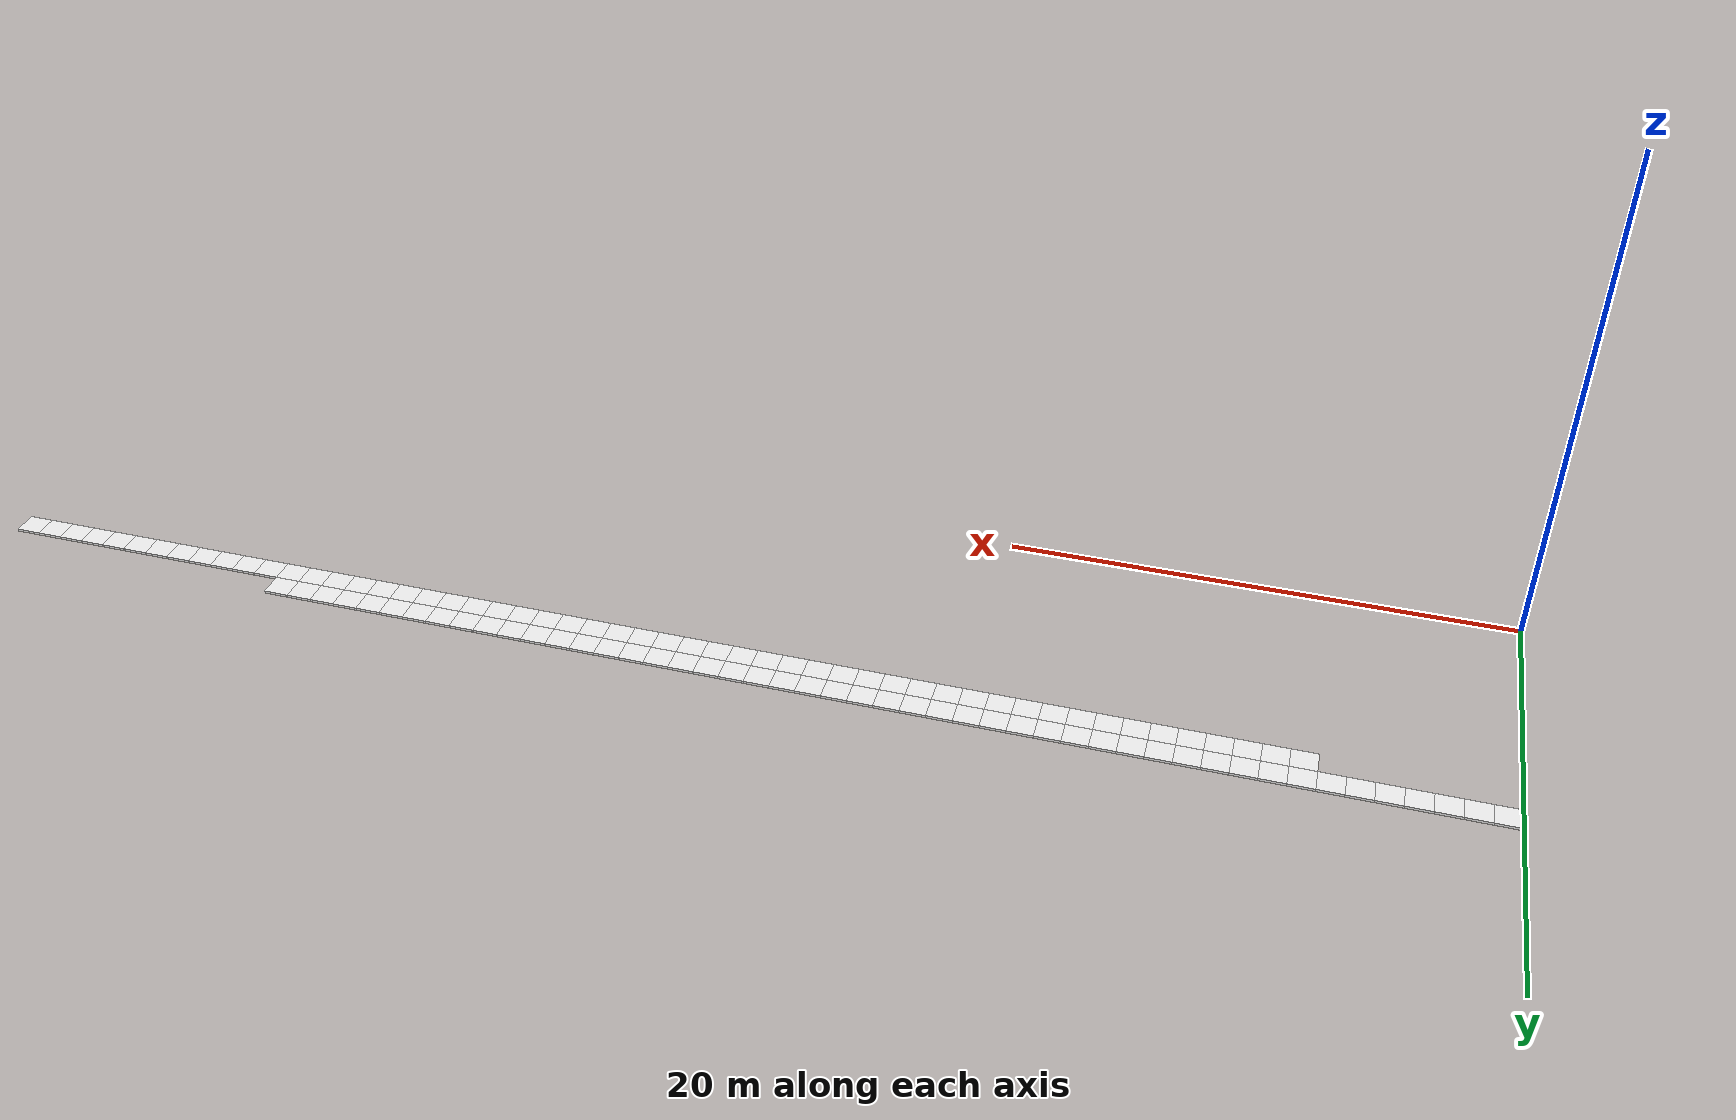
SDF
<sdf version="1.6">
 <world name="grid_world">
  <model name="cell_7_10">
   <static>true</static>
   <link name="link">
    <collision name="collision"><geometry><box><size>1 1 0.1</size></box></geometry></collision>
    <visual name="visual">
     <geometry><box><size>1 1 0.1</size></box></geometry>
     <material>
      <script><uri>file://media/materials/scripts/gazebo.material</uri><name>Gazebo/White</name></script>
     </material>
    </visual>
    <pose>7.5 10.5 0.05 0 0 0</pose>
   </link>
  </model>
  <model name="cell_8_10">
   <static>true</static>
   <link name="link">
    <collision name="collision"><geometry><box><size>1 1 0.1</size></box></geometry></collision>
    <visual name="visual">
     <geometry><box><size>1 1 0.1</size></box></geometry>
     <material>
      <script><uri>file://media/materials/scripts/gazebo.material</uri><name>Gazebo/White</name></script>
     </material>
    </visual>
    <pose>8.5 10.5 0.05 0 0 0</pose>
   </link>
  </model>
  <model name="cell_9_10">
   <static>true</static>
   <link name="link">
    <collision name="collision"><geometry><box><size>1 1 0.1</size></box></geometry></collision>
    <visual name="visual">
     <geometry><box><size>1 1 0.1</size></box></geometry>
     <material>
      <script><uri>file://media/materials/scripts/gazebo.material</uri><name>Gazebo/White</name></script>
     </material>
    </visual>
    <pose>9.5 10.5 0.05 0 0 0</pose>
   </link>
  </model>
  <model name="cell_10_10">
   <static>true</static>
   <link name="link">
    <collision name="collision"><geometry><box><size>1 1 0.1</size></box></geometry></collision>
    <visual name="visual">
     <geometry><box><size>1 1 0.1</size></box></geometry>
     <material>
      <script><uri>file://media/materials/scripts/gazebo.material</uri><name>Gazebo/White</name></script>
     </material>
    </visual>
    <pose>10.5 10.5 0.05 0 0 0</pose>
   </link>
  </model>
  <model name="cell_11_10">
   <static>true</static>
   <link name="link">
    <collision name="collision"><geometry><box><size>1 1 0.1</size></box></geometry></collision>
    <visual name="visual">
     <geometry><box><size>1 1 0.1</size></box></geometry>
     <material>
      <script><uri>file://media/materials/scripts/gazebo.material</uri><name>Gazebo/White</name></script>
     </material>
    </visual>
    <pose>11.5 10.5 0.05 0 0 0</pose>
   </link>
  </model>
  <model name="cell_12_10">
   <static>true</static>
   <link name="link">
    <collision name="collision"><geometry><box><size>1 1 0.1</size></box></geometry></collision>
    <visual name="visual">
     <geometry><box><size>1 1 0.1</size></box></geometry>
     <material>
      <script><uri>file://media/materials/scripts/gazebo.material</uri><name>Gazebo/White</name></script>
     </material>
    </visual>
    <pose>12.5 10.5 0.05 0 0 0</pose>
   </link>
  </model>
  <model name="cell_13_10">
   <static>true</static>
   <link name="link">
    <collision name="collision"><geometry><box><size>1 1 0.1</size></box></geometry></collision>
    <visual name="visual">
     <geometry><box><size>1 1 0.1</size></box></geometry>
     <material>
      <script><uri>file://media/materials/scripts/gazebo.material</uri><name>Gazebo/White</name></script>
     </material>
    </visual>
    <pose>13.5 10.5 0.05 0 0 0</pose>
   </link>
  </model>
  <model name="cell_14_10">
   <static>true</static>
   <link name="link">
    <collision name="collision"><geometry><box><size>1 1 0.1</size></box></geometry></collision>
    <visual name="visual">
     <geometry><box><size>1 1 0.1</size></box></geometry>
     <material>
      <script><uri>file://media/materials/scripts/gazebo.material</uri><name>Gazebo/White</name></script>
     </material>
    </visual>
    <pose>14.5 10.5 0.05 0 0 0</pose>
   </link>
  </model>
  <model name="cell_15_10">
   <static>true</static>
   <link name="link">
    <collision name="collision"><geometry><box><size>1 1 0.1</size></box></geometry></collision>
    <visual name="visual">
     <geometry><box><size>1 1 0.1</size></box></geometry>
     <material>
      <script><uri>file://media/materials/scripts/gazebo.material</uri><name>Gazebo/White</name></script>
     </material>
    </visual>
    <pose>15.5 10.5 0.05 0 0 0</pose>
   </link>
  </model>
  <model name="cell_16_10">
   <static>true</static>
   <link name="link">
    <collision name="collision"><geometry><box><size>1 1 0.1</size></box></geometry></collision>
    <visual name="visual">
     <geometry><box><size>1 1 0.1</size></box></geometry>
     <material>
      <script><uri>file://media/materials/scripts/gazebo.material</uri><name>Gazebo/White</name></script>
     </material>
    </visual>
    <pose>16.5 10.5 0.05 0 0 0</pose>
   </link>
  </model>
  <model name="cell_17_10">
   <static>true</static>
   <link name="link">
    <collision name="collision"><geometry><box><size>1 1 0.1</size></box></geometry></collision>
    <visual name="visual">
     <geometry><box><size>1 1 0.1</size></box></geometry>
     <material>
      <script><uri>file://media/materials/scripts/gazebo.material</uri><name>Gazebo/White</name></script>
     </material>
    </visual>
    <pose>17.5 10.5 0.05 0 0 0</pose>
   </link>
  </model>
  <model name="cell_18_10">
   <static>true</static>
   <link name="link">
    <collision name="collision"><geometry><box><size>1 1 0.1</size></box></geometry></collision>
    <visual name="visual">
     <geometry><box><size>1 1 0.1</size></box></geometry>
     <material>
      <script><uri>file://media/materials/scripts/gazebo.material</uri><name>Gazebo/White</name></script>
     </material>
    </visual>
    <pose>18.5 10.5 0.05 0 0 0</pose>
   </link>
  </model>
  <model name="cell_19_10">
   <static>true</static>
   <link name="link">
    <collision name="collision"><geometry><box><size>1 1 0.1</size></box></geometry></collision>
    <visual name="visual">
     <geometry><box><size>1 1 0.1</size></box></geometry>
     <material>
      <script><uri>file://media/materials/scripts/gazebo.material</uri><name>Gazebo/White</name></script>
     </material>
    </visual>
    <pose>19.5 10.5 0.05 0 0 0</pose>
   </link>
  </model>
  <model name="cell_20_10">
   <static>true</static>
   <link name="link">
    <collision name="collision"><geometry><box><size>1 1 0.1</size></box></geometry></collision>
    <visual name="visual">
     <geometry><box><size>1 1 0.1</size></box></geometry>
     <material>
      <script><uri>file://media/materials/scripts/gazebo.material</uri><name>Gazebo/White</name></script>
     </material>
    </visual>
    <pose>20.5 10.5 0.05 0 0 0</pose>
   </link>
  </model>
  <model name="cell_21_10">
   <static>true</static>
   <link name="link">
    <collision name="collision"><geometry><box><size>1 1 0.1</size></box></geometry></collision>
    <visual name="visual">
     <geometry><box><size>1 1 0.1</size></box></geometry>
     <material>
      <script><uri>file://media/materials/scripts/gazebo.material</uri><name>Gazebo/White</name></script>
     </material>
    </visual>
    <pose>21.5 10.5 0.05 0 0 0</pose>
   </link>
  </model>
  <model name="cell_22_10">
   <static>true</static>
   <link name="link">
    <collision name="collision"><geometry><box><size>1 1 0.1</size></box></geometry></collision>
    <visual name="visual">
     <geometry><box><size>1 1 0.1</size></box></geometry>
     <material>
      <script><uri>file://media/materials/scripts/gazebo.material</uri><name>Gazebo/White</name></script>
     </material>
    </visual>
    <pose>22.5 10.5 0.05 0 0 0</pose>
   </link>
  </model>
  <model name="cell_23_10">
   <static>true</static>
   <link name="link">
    <collision name="collision"><geometry><box><size>1 1 0.1</size></box></geometry></collision>
    <visual name="visual">
     <geometry><box><size>1 1 0.1</size></box></geometry>
     <material>
      <script><uri>file://media/materials/scripts/gazebo.material</uri><name>Gazebo/White</name></script>
     </material>
    </visual>
    <pose>23.5 10.5 0.05 0 0 0</pose>
   </link>
  </model>
  <model name="cell_24_10">
   <static>true</static>
   <link name="link">
    <collision name="collision"><geometry><box><size>1 1 0.1</size></box></geometry></collision>
    <visual name="visual">
     <geometry><box><size>1 1 0.1</size></box></geometry>
     <material>
      <script><uri>file://media/materials/scripts/gazebo.material</uri><name>Gazebo/White</name></script>
     </material>
    </visual>
    <pose>24.5 10.5 0.05 0 0 0</pose>
   </link>
  </model>
  <model name="cell_25_10">
   <static>true</static>
   <link name="link">
    <collision name="collision"><geometry><box><size>1 1 0.1</size></box></geometry></collision>
    <visual name="visual">
     <geometry><box><size>1 1 0.1</size></box></geometry>
     <material>
      <script><uri>file://media/materials/scripts/gazebo.material</uri><name>Gazebo/White</name></script>
     </material>
    </visual>
    <pose>25.5 10.5 0.05 0 0 0</pose>
   </link>
  </model>
  <model name="cell_26_10">
   <static>true</static>
   <link name="link">
    <collision name="collision"><geometry><box><size>1 1 0.1</size></box></geometry></collision>
    <visual name="visual">
     <geometry><box><size>1 1 0.1</size></box></geometry>
     <material>
      <script><uri>file://media/materials/scripts/gazebo.material</uri><name>Gazebo/White</name></script>
     </material>
    </visual>
    <pose>26.5 10.5 0.05 0 0 0</pose>
   </link>
  </model>
  <model name="cell_27_10">
   <static>true</static>
   <link name="link">
    <collision name="collision"><geometry><box><size>1 1 0.1</size></box></geometry></collision>
    <visual name="visual">
     <geometry><box><size>1 1 0.1</size></box></geometry>
     <material>
      <script><uri>file://media/materials/scripts/gazebo.material</uri><name>Gazebo/White</name></script>
     </material>
    </visual>
    <pose>27.5 10.5 0.05 0 0 0</pose>
   </link>
  </model>
  <model name="cell_28_10">
   <static>true</static>
   <link name="link">
    <collision name="collision"><geometry><box><size>1 1 0.1</size></box></geometry></collision>
    <visual name="visual">
     <geometry><box><size>1 1 0.1</size></box></geometry>
     <material>
      <script><uri>file://media/materials/scripts/gazebo.material</uri><name>Gazebo/White</name></script>
     </material>
    </visual>
    <pose>28.5 10.5 0.05 0 0 0</pose>
   </link>
  </model>
  <model name="cell_29_10">
   <static>true</static>
   <link name="link">
    <collision name="collision"><geometry><box><size>1 1 0.1</size></box></geometry></collision>
    <visual name="visual">
     <geometry><box><size>1 1 0.1</size></box></geometry>
     <material>
      <script><uri>file://media/materials/scripts/gazebo.material</uri><name>Gazebo/White</name></script>
     </material>
    </visual>
    <pose>29.5 10.5 0.05 0 0 0</pose>
   </link>
  </model>
  <model name="cell_30_10">
   <static>true</static>
   <link name="link">
    <collision name="collision"><geometry><box><size>1 1 0.1</size></box></geometry></collision>
    <visual name="visual">
     <geometry><box><size>1 1 0.1</size></box></geometry>
     <material>
      <script><uri>file://media/materials/scripts/gazebo.material</uri><name>Gazebo/White</name></script>
     </material>
    </visual>
    <pose>30.5 10.5 0.05 0 0 0</pose>
   </link>
  </model>
  <model name="cell_31_10">
   <static>true</static>
   <link name="link">
    <collision name="collision"><geometry><box><size>1 1 0.1</size></box></geometry></collision>
    <visual name="visual">
     <geometry><box><size>1 1 0.1</size></box></geometry>
     <material>
      <script><uri>file://media/materials/scripts/gazebo.material</uri><name>Gazebo/White</name></script>
     </material>
    </visual>
    <pose>31.5 10.5 0.05 0 0 0</pose>
   </link>
  </model>
  <model name="cell_32_10">
   <static>true</static>
   <link name="link">
    <collision name="collision"><geometry><box><size>1 1 0.1</size></box></geometry></collision>
    <visual name="visual">
     <geometry><box><size>1 1 0.1</size></box></geometry>
     <material>
      <script><uri>file://media/materials/scripts/gazebo.material</uri><name>Gazebo/White</name></script>
     </material>
    </visual>
    <pose>32.5 10.5 0.05 0 0 0</pose>
   </link>
  </model>
  <model name="cell_33_10">
   <static>true</static>
   <link name="link">
    <collision name="collision"><geometry><box><size>1 1 0.1</size></box></geometry></collision>
    <visual name="visual">
     <geometry><box><size>1 1 0.1</size></box></geometry>
     <material>
      <script><uri>file://media/materials/scripts/gazebo.material</uri><name>Gazebo/White</name></script>
     </material>
    </visual>
    <pose>33.5 10.5 0.05 0 0 0</pose>
   </link>
  </model>
  <model name="cell_34_10">
   <static>true</static>
   <link name="link">
    <collision name="collision"><geometry><box><size>1 1 0.1</size></box></geometry></collision>
    <visual name="visual">
     <geometry><box><size>1 1 0.1</size></box></geometry>
     <material>
      <script><uri>file://media/materials/scripts/gazebo.material</uri><name>Gazebo/White</name></script>
     </material>
    </visual>
    <pose>34.5 10.5 0.05 0 0 0</pose>
   </link>
  </model>
  <model name="cell_35_10">
   <static>true</static>
   <link name="link">
    <collision name="collision"><geometry><box><size>1 1 0.1</size></box></geometry></collision>
    <visual name="visual">
     <geometry><box><size>1 1 0.1</size></box></geometry>
     <material>
      <script><uri>file://media/materials/scripts/gazebo.material</uri><name>Gazebo/White</name></script>
     </material>
    </visual>
    <pose>35.5 10.5 0.05 0 0 0</pose>
   </link>
  </model>
  <model name="cell_36_10">
   <static>true</static>
   <link name="link">
    <collision name="collision"><geometry><box><size>1 1 0.1</size></box></geometry></collision>
    <visual name="visual">
     <geometry><box><size>1 1 0.1</size></box></geometry>
     <material>
      <script><uri>file://media/materials/scripts/gazebo.material</uri><name>Gazebo/White</name></script>
     </material>
    </visual>
    <pose>36.5 10.5 0.05 0 0 0</pose>
   </link>
  </model>
  <model name="cell_37_10">
   <static>true</static>
   <link name="link">
    <collision name="collision"><geometry><box><size>1 1 0.1</size></box></geometry></collision>
    <visual name="visual">
     <geometry><box><size>1 1 0.1</size></box></geometry>
     <material>
      <script><uri>file://media/materials/scripts/gazebo.material</uri><name>Gazebo/White</name></script>
     </material>
    </visual>
    <pose>37.5 10.5 0.05 0 0 0</pose>
   </link>
  </model>
  <model name="cell_38_10">
   <static>true</static>
   <link name="link">
    <collision name="collision"><geometry><box><size>1 1 0.1</size></box></geometry></collision>
    <visual name="visual">
     <geometry><box><size>1 1 0.1</size></box></geometry>
     <material>
      <script><uri>file://media/materials/scripts/gazebo.material</uri><name>Gazebo/White</name></script>
     </material>
    </visual>
    <pose>38.5 10.5 0.05 0 0 0</pose>
   </link>
  </model>
  <model name="cell_39_10">
   <static>true</static>
   <link name="link">
    <collision name="collision"><geometry><box><size>1 1 0.1</size></box></geometry></collision>
    <visual name="visual">
     <geometry><box><size>1 1 0.1</size></box></geometry>
     <material>
      <script><uri>file://media/materials/scripts/gazebo.material</uri><name>Gazebo/White</name></script>
     </material>
    </visual>
    <pose>39.5 10.5 0.05 0 0 0</pose>
   </link>
  </model>
  <model name="cell_40_10">
   <static>true</static>
   <link name="link">
    <collision name="collision"><geometry><box><size>1 1 0.1</size></box></geometry></collision>
    <visual name="visual">
     <geometry><box><size>1 1 0.1</size></box></geometry>
     <material>
      <script><uri>file://media/materials/scripts/gazebo.material</uri><name>Gazebo/White</name></script>
     </material>
    </visual>
    <pose>40.5 10.5 0.05 0 0 0</pose>
   </link>
  </model>
  <model name="cell_41_10">
   <static>true</static>
   <link name="link">
    <collision name="collision"><geometry><box><size>1 1 0.1</size></box></geometry></collision>
    <visual name="visual">
     <geometry><box><size>1 1 0.1</size></box></geometry>
     <material>
      <script><uri>file://media/materials/scripts/gazebo.material</uri><name>Gazebo/White</name></script>
     </material>
    </visual>
    <pose>41.5 10.5 0.05 0 0 0</pose>
   </link>
  </model>
  <model name="cell_42_10">
   <static>true</static>
   <link name="link">
    <collision name="collision"><geometry><box><size>1 1 0.1</size></box></geometry></collision>
    <visual name="visual">
     <geometry><box><size>1 1 0.1</size></box></geometry>
     <material>
      <script><uri>file://media/materials/scripts/gazebo.material</uri><name>Gazebo/White</name></script>
     </material>
    </visual>
    <pose>42.5 10.5 0.05 0 0 0</pose>
   </link>
  </model>
  <model name="cell_43_10">
   <static>true</static>
   <link name="link">
    <collision name="collision"><geometry><box><size>1 1 0.1</size></box></geometry></collision>
    <visual name="visual">
     <geometry><box><size>1 1 0.1</size></box></geometry>
     <material>
      <script><uri>file://media/materials/scripts/gazebo.material</uri><name>Gazebo/White</name></script>
     </material>
    </visual>
    <pose>43.5 10.5 0.05 0 0 0</pose>
   </link>
  </model>
  <model name="cell_44_10">
   <static>true</static>
   <link name="link">
    <collision name="collision"><geometry><box><size>1 1 0.1</size></box></geometry></collision>
    <visual name="visual">
     <geometry><box><size>1 1 0.1</size></box></geometry>
     <material>
      <script><uri>file://media/materials/scripts/gazebo.material</uri><name>Gazebo/White</name></script>
     </material>
    </visual>
    <pose>44.5 10.5 0.05 0 0 0</pose>
   </link>
  </model>
  <model name="cell_45_10">
   <static>true</static>
   <link name="link">
    <collision name="collision"><geometry><box><size>1 1 0.1</size></box></geometry></collision>
    <visual name="visual">
     <geometry><box><size>1 1 0.1</size></box></geometry>
     <material>
      <script><uri>file://media/materials/scripts/gazebo.material</uri><name>Gazebo/White</name></script>
     </material>
    </visual>
    <pose>45.5 10.5 0.05 0 0 0</pose>
   </link>
  </model>
  <model name="cell_46_10">
   <static>true</static>
   <link name="link">
    <collision name="collision"><geometry><box><size>1 1 0.1</size></box></geometry></collision>
    <visual name="visual">
     <geometry><box><size>1 1 0.1</size></box></geometry>
     <material>
      <script><uri>file://media/materials/scripts/gazebo.material</uri><name>Gazebo/White</name></script>
     </material>
    </visual>
    <pose>46.5 10.5 0.05 0 0 0</pose>
   </link>
  </model>
  <model name="cell_47_10">
   <static>true</static>
   <link name="link">
    <collision name="collision"><geometry><box><size>1 1 0.1</size></box></geometry></collision>
    <visual name="visual">
     <geometry><box><size>1 1 0.1</size></box></geometry>
     <material>
      <script><uri>file://media/materials/scripts/gazebo.material</uri><name>Gazebo/White</name></script>
     </material>
    </visual>
    <pose>47.5 10.5 0.05 0 0 0</pose>
   </link>
  </model>
  <model name="cell_48_10">
   <static>true</static>
   <link name="link">
    <collision name="collision"><geometry><box><size>1 1 0.1</size></box></geometry></collision>
    <visual name="visual">
     <geometry><box><size>1 1 0.1</size></box></geometry>
     <material>
      <script><uri>file://media/materials/scripts/gazebo.material</uri><name>Gazebo/White</name></script>
     </material>
    </visual>
    <pose>48.5 10.5 0.05 0 0 0</pose>
   </link>
  </model>
  <model name="cell_49_10">
   <static>true</static>
   <link name="link">
    <collision name="collision"><geometry><box><size>1 1 0.1</size></box></geometry></collision>
    <visual name="visual">
     <geometry><box><size>1 1 0.1</size></box></geometry>
     <material>
      <script><uri>file://media/materials/scripts/gazebo.material</uri><name>Gazebo/White</name></script>
     </material>
    </visual>
    <pose>49.5 10.5 0.05 0 0 0</pose>
   </link>
  </model>
  <model name="cell_50_10">
   <static>true</static>
   <link name="link">
    <collision name="collision"><geometry><box><size>1 1 0.1</size></box></geometry></collision>
    <visual name="visual">
     <geometry><box><size>1 1 0.1</size></box></geometry>
     <material>
      <script><uri>file://media/materials/scripts/gazebo.material</uri><name>Gazebo/White</name></script>
     </material>
    </visual>
    <pose>50.5 10.5 0.05 0 0 0</pose>
   </link>
  </model>
  <model name="cell_51_10">
   <static>true</static>
   <link name="link">
    <collision name="collision"><geometry><box><size>1 1 0.1</size></box></geometry></collision>
    <visual name="visual">
     <geometry><box><size>1 1 0.1</size></box></geometry>
     <material>
      <script><uri>file://media/materials/scripts/gazebo.material</uri><name>Gazebo/White</name></script>
     </material>
    </visual>
    <pose>51.5 10.5 0.05 0 0 0</pose>
   </link>
  </model>
  <model name="cell_52_10">
   <static>true</static>
   <link name="link">
    <collision name="collision"><geometry><box><size>1 1 0.1</size></box></geometry></collision>
    <visual name="visual">
     <geometry><box><size>1 1 0.1</size></box></geometry>
     <material>
      <script><uri>file://media/materials/scripts/gazebo.material</uri><name>Gazebo/White</name></script>
     </material>
    </visual>
    <pose>52.5 10.5 0.05 0 0 0</pose>
   </link>
  </model>
  <model name="cell_53_10">
   <static>true</static>
   <link name="link">
    <collision name="collision"><geometry><box><size>1 1 0.1</size></box></geometry></collision>
    <visual name="visual">
     <geometry><box><size>1 1 0.1</size></box></geometry>
     <material>
      <script><uri>file://media/materials/scripts/gazebo.material</uri><name>Gazebo/White</name></script>
     </material>
    </visual>
    <pose>53.5 10.5 0.05 0 0 0</pose>
   </link>
  </model>
  <model name="cell_54_10">
   <static>true</static>
   <link name="link">
    <collision name="collision"><geometry><box><size>1 1 0.1</size></box></geometry></collision>
    <visual name="visual">
     <geometry><box><size>1 1 0.1</size></box></geometry>
     <material>
      <script><uri>file://media/materials/scripts/gazebo.material</uri><name>Gazebo/White</name></script>
     </material>
    </visual>
    <pose>54.5 10.5 0.05 0 0 0</pose>
   </link>
  </model>
  <model name="cell_55_10">
   <static>true</static>
   <link name="link">
    <collision name="collision"><geometry><box><size>1 1 0.1</size></box></geometry></collision>
    <visual name="visual">
     <geometry><box><size>1 1 0.1</size></box></geometry>
     <material>
      <script><uri>file://media/materials/scripts/gazebo.material</uri><name>Gazebo/White</name></script>
     </material>
    </visual>
    <pose>55.5 10.5 0.05 0 0 0</pose>
   </link>
  </model>
  <model name="cell_56_10">
   <static>true</static>
   <link name="link">
    <collision name="collision"><geometry><box><size>1 1 0.1</size></box></geometry></collision>
    <visual name="visual">
     <geometry><box><size>1 1 0.1</size></box></geometry>
     <material>
      <script><uri>file://media/materials/scripts/gazebo.material</uri><name>Gazebo/White</name></script>
     </material>
    </visual>
    <pose>56.5 10.5 0.05 0 0 0</pose>
   </link>
  </model>
  <model name="cell_57_10">
   <static>true</static>
   <link name="link">
    <collision name="collision"><geometry><box><size>1 1 0.1</size></box></geometry></collision>
    <visual name="visual">
     <geometry><box><size>1 1 0.1</size></box></geometry>
     <material>
      <script><uri>file://media/materials/scripts/gazebo.material</uri><name>Gazebo/White</name></script>
     </material>
    </visual>
    <pose>57.5 10.5 0.05 0 0 0</pose>
   </link>
  </model>
  <model name="cell_58_10">
   <static>true</static>
   <link name="link">
    <collision name="collision"><geometry><box><size>1 1 0.1</size></box></geometry></collision>
    <visual name="visual">
     <geometry><box><size>1 1 0.1</size></box></geometry>
     <material>
      <script><uri>file://media/materials/scripts/gazebo.material</uri><name>Gazebo/White</name></script>
     </material>
    </visual>
    <pose>58.5 10.5 0.05 0 0 0</pose>
   </link>
  </model>
  <model name="cell_59_10">
   <static>true</static>
   <link name="link">
    <collision name="collision"><geometry><box><size>1 1 0.1</size></box></geometry></collision>
    <visual name="visual">
     <geometry><box><size>1 1 0.1</size></box></geometry>
     <material>
      <script><uri>file://media/materials/scripts/gazebo.material</uri><name>Gazebo/White</name></script>
     </material>
    </visual>
    <pose>59.5 10.5 0.05 0 0 0</pose>
   </link>
  </model>
  <model name="cell_0_11">
   <static>true</static>
   <link name="link">
    <collision name="collision"><geometry><box><size>1 1 0.1</size></box></geometry></collision>
    <visual name="visual">
     <geometry><box><size>1 1 0.1</size></box></geometry>
     <material>
      <script><uri>file://media/materials/scripts/gazebo.material</uri><name>Gazebo/White</name></script>
     </material>
    </visual>
    <pose>0.5 11.5 0.05 0 0 0</pose>
   </link>
  </model>
  <model name="cell_1_11">
   <static>true</static>
   <link name="link">
    <collision name="collision"><geometry><box><size>1 1 0.1</size></box></geometry></collision>
    <visual name="visual">
     <geometry><box><size>1 1 0.1</size></box></geometry>
     <material>
      <script><uri>file://media/materials/scripts/gazebo.material</uri><name>Gazebo/White</name></script>
     </material>
    </visual>
    <pose>1.5 11.5 0.05 0 0 0</pose>
   </link>
  </model>
  <model name="cell_2_11">
   <static>true</static>
   <link name="link">
    <collision name="collision"><geometry><box><size>1 1 0.1</size></box></geometry></collision>
    <visual name="visual">
     <geometry><box><size>1 1 0.1</size></box></geometry>
     <material>
      <script><uri>file://media/materials/scripts/gazebo.material</uri><name>Gazebo/White</name></script>
     </material>
    </visual>
    <pose>2.5 11.5 0.05 0 0 0</pose>
   </link>
  </model>
  <model name="cell_3_11">
   <static>true</static>
   <link name="link">
    <collision name="collision"><geometry><box><size>1 1 0.1</size></box></geometry></collision>
    <visual name="visual">
     <geometry><box><size>1 1 0.1</size></box></geometry>
     <material>
      <script><uri>file://media/materials/scripts/gazebo.material</uri><name>Gazebo/White</name></script>
     </material>
    </visual>
    <pose>3.5 11.5 0.05 0 0 0</pose>
   </link>
  </model>
  <model name="cell_4_11">
   <static>true</static>
   <link name="link">
    <collision name="collision"><geometry><box><size>1 1 0.1</size></box></geometry></collision>
    <visual name="visual">
     <geometry><box><size>1 1 0.1</size></box></geometry>
     <material>
      <script><uri>file://media/materials/scripts/gazebo.material</uri><name>Gazebo/White</name></script>
     </material>
    </visual>
    <pose>4.5 11.5 0.05 0 0 0</pose>
   </link>
  </model>
  <model name="cell_5_11">
   <static>true</static>
   <link name="link">
    <collision name="collision"><geometry><box><size>1 1 0.1</size></box></geometry></collision>
    <visual name="visual">
     <geometry><box><size>1 1 0.1</size></box></geometry>
     <material>
      <script><uri>file://media/materials/scripts/gazebo.material</uri><name>Gazebo/White</name></script>
     </material>
    </visual>
    <pose>5.5 11.5 0.05 0 0 0</pose>
   </link>
  </model>
  <model name="cell_6_11">
   <static>true</static>
   <link name="link">
    <collision name="collision"><geometry><box><size>1 1 0.1</size></box></geometry></collision>
    <visual name="visual">
     <geometry><box><size>1 1 0.1</size></box></geometry>
     <material>
      <script><uri>file://media/materials/scripts/gazebo.material</uri><name>Gazebo/White</name></script>
     </material>
    </visual>
    <pose>6.5 11.5 0.05 0 0 0</pose>
   </link>
  </model>
  <model name="cell_7_11">
   <static>true</static>
   <link name="link">
    <collision name="collision"><geometry><box><size>1 1 0.1</size></box></geometry></collision>
    <visual name="visual">
     <geometry><box><size>1 1 0.1</size></box></geometry>
     <material>
      <script><uri>file://media/materials/scripts/gazebo.material</uri><name>Gazebo/White</name></script>
     </material>
    </visual>
    <pose>7.5 11.5 0.05 0 0 0</pose>
   </link>
  </model>
  <model name="cell_8_11">
   <static>true</static>
   <link name="link">
    <collision name="collision"><geometry><box><size>1 1 0.1</size></box></geometry></collision>
    <visual name="visual">
     <geometry><box><size>1 1 0.1</size></box></geometry>
     <material>
      <script><uri>file://media/materials/scripts/gazebo.material</uri><name>Gazebo/White</name></script>
     </material>
    </visual>
    <pose>8.5 11.5 0.05 0 0 0</pose>
   </link>
  </model>
  <model name="cell_9_11">
   <static>true</static>
   <link name="link">
    <collision name="collision"><geometry><box><size>1 1 0.1</size></box></geometry></collision>
    <visual name="visual">
     <geometry><box><size>1 1 0.1</size></box></geometry>
     <material>
      <script><uri>file://media/materials/scripts/gazebo.material</uri><name>Gazebo/White</name></script>
     </material>
    </visual>
    <pose>9.5 11.5 0.05 0 0 0</pose>
   </link>
  </model>
  <model name="cell_10_11">
   <static>true</static>
   <link name="link">
    <collision name="collision"><geometry><box><size>1 1 0.1</size></box></geometry></collision>
    <visual name="visual">
     <geometry><box><size>1 1 0.1</size></box></geometry>
     <material>
      <script><uri>file://media/materials/scripts/gazebo.material</uri><name>Gazebo/White</name></script>
     </material>
    </visual>
    <pose>10.5 11.5 0.05 0 0 0</pose>
   </link>
  </model>
  <model name="cell_11_11">
   <static>true</static>
   <link name="link">
    <collision name="collision"><geometry><box><size>1 1 0.1</size></box></geometry></collision>
    <visual name="visual">
     <geometry><box><size>1 1 0.1</size></box></geometry>
     <material>
      <script><uri>file://media/materials/scripts/gazebo.material</uri><name>Gazebo/White</name></script>
     </material>
    </visual>
    <pose>11.5 11.5 0.05 0 0 0</pose>
   </link>
  </model>
  <model name="cell_12_11">
   <static>true</static>
   <link name="link">
    <collision name="collision"><geometry><box><size>1 1 0.1</size></box></geometry></collision>
    <visual name="visual">
     <geometry><box><size>1 1 0.1</size></box></geometry>
     <material>
      <script><uri>file://media/materials/scripts/gazebo.material</uri><name>Gazebo/White</name></script>
     </material>
    </visual>
    <pose>12.5 11.5 0.05 0 0 0</pose>
   </link>
  </model>
  <model name="cell_13_11">
   <static>true</static>
   <link name="link">
    <collision name="collision"><geometry><box><size>1 1 0.1</size></box></geometry></collision>
    <visual name="visual">
     <geometry><box><size>1 1 0.1</size></box></geometry>
     <material>
      <script><uri>file://media/materials/scripts/gazebo.material</uri><name>Gazebo/White</name></script>
     </material>
    </visual>
    <pose>13.5 11.5 0.05 0 0 0</pose>
   </link>
  </model>
  <model name="cell_14_11">
   <static>true</static>
   <link name="link">
    <collision name="collision"><geometry><box><size>1 1 0.1</size></box></geometry></collision>
    <visual name="visual">
     <geometry><box><size>1 1 0.1</size></box></geometry>
     <material>
      <script><uri>file://media/materials/scripts/gazebo.material</uri><name>Gazebo/White</name></script>
     </material>
    </visual>
    <pose>14.5 11.5 0.05 0 0 0</pose>
   </link>
  </model>
  <model name="cell_15_11">
   <static>true</static>
   <link name="link">
    <collision name="collision"><geometry><box><size>1 1 0.1</size></box></geometry></collision>
    <visual name="visual">
     <geometry><box><size>1 1 0.1</size></box></geometry>
     <material>
      <script><uri>file://media/materials/scripts/gazebo.material</uri><name>Gazebo/White</name></script>
     </material>
    </visual>
    <pose>15.5 11.5 0.05 0 0 0</pose>
   </link>
  </model>
  <model name="cell_16_11">
   <static>true</static>
   <link name="link">
    <collision name="collision"><geometry><box><size>1 1 0.1</size></box></geometry></collision>
    <visual name="visual">
     <geometry><box><size>1 1 0.1</size></box></geometry>
     <material>
      <script><uri>file://media/materials/scripts/gazebo.material</uri><name>Gazebo/White</name></script>
     </material>
    </visual>
    <pose>16.5 11.5 0.05 0 0 0</pose>
   </link>
  </model>
  <model name="cell_17_11">
   <static>true</static>
   <link name="link">
    <collision name="collision"><geometry><box><size>1 1 0.1</size></box></geometry></collision>
    <visual name="visual">
     <geometry><box><size>1 1 0.1</size></box></geometry>
     <material>
      <script><uri>file://media/materials/scripts/gazebo.material</uri><name>Gazebo/White</name></script>
     </material>
    </visual>
    <pose>17.5 11.5 0.05 0 0 0</pose>
   </link>
  </model>
  <model name="cell_18_11">
   <static>true</static>
   <link name="link">
    <collision name="collision"><geometry><box><size>1 1 0.1</size></box></geometry></collision>
    <visual name="visual">
     <geometry><box><size>1 1 0.1</size></box></geometry>
     <material>
      <script><uri>file://media/materials/scripts/gazebo.material</uri><name>Gazebo/White</name></script>
     </material>
    </visual>
    <pose>18.5 11.5 0.05 0 0 0</pose>
   </link>
  </model>
  <model name="cell_19_11">
   <static>true</static>
   <link name="link">
    <collision name="collision"><geometry><box><size>1 1 0.1</size></box></geometry></collision>
    <visual name="visual">
     <geometry><box><size>1 1 0.1</size></box></geometry>
     <material>
      <script><uri>file://media/materials/scripts/gazebo.material</uri><name>Gazebo/White</name></script>
     </material>
    </visual>
    <pose>19.5 11.5 0.05 0 0 0</pose>
   </link>
  </model>
  <model name="cell_20_11">
   <static>true</static>
   <link name="link">
    <collision name="collision"><geometry><box><size>1 1 0.1</size></box></geometry></collision>
    <visual name="visual">
     <geometry><box><size>1 1 0.1</size></box></geometry>
     <material>
      <script><uri>file://media/materials/scripts/gazebo.material</uri><name>Gazebo/White</name></script>
     </material>
    </visual>
    <pose>20.5 11.5 0.05 0 0 0</pose>
   </link>
  </model>
  <model name="cell_21_11">
   <static>true</static>
   <link name="link">
    <collision name="collision"><geometry><box><size>1 1 0.1</size></box></geometry></collision>
    <visual name="visual">
     <geometry><box><size>1 1 0.1</size></box></geometry>
     <material>
      <script><uri>file://media/materials/scripts/gazebo.material</uri><name>Gazebo/White</name></script>
     </material>
    </visual>
    <pose>21.5 11.5 0.05 0 0 0</pose>
   </link>
  </model>
  <model name="cell_22_11">
   <static>true</static>
   <link name="link">
    <collision name="collision"><geometry><box><size>1 1 0.1</size></box></geometry></collision>
    <visual name="visual">
     <geometry><box><size>1 1 0.1</size></box></geometry>
     <material>
      <script><uri>file://media/materials/scripts/gazebo.material</uri><name>Gazebo/White</name></script>
     </material>
    </visual>
    <pose>22.5 11.5 0.05 0 0 0</pose>
   </link>
  </model>
  <model name="cell_23_11">
   <static>true</static>
   <link name="link">
    <collision name="collision"><geometry><box><size>1 1 0.1</size></box></geometry></collision>
    <visual name="visual">
     <geometry><box><size>1 1 0.1</size></box></geometry>
     <material>
      <script><uri>file://media/materials/scripts/gazebo.material</uri><name>Gazebo/White</name></script>
     </material>
    </visual>
    <pose>23.5 11.5 0.05 0 0 0</pose>
   </link>
  </model>
  <model name="cell_24_11">
   <static>true</static>
   <link name="link">
    <collision name="collision"><geometry><box><size>1 1 0.1</size></box></geometry></collision>
    <visual name="visual">
     <geometry><box><size>1 1 0.1</size></box></geometry>
     <material>
      <script><uri>file://media/materials/scripts/gazebo.material</uri><name>Gazebo/White</name></script>
     </material>
    </visual>
    <pose>24.5 11.5 0.05 0 0 0</pose>
   </link>
  </model>
  <model name="cell_25_11">
   <static>true</static>
   <link name="link">
    <collision name="collision"><geometry><box><size>1 1 0.1</size></box></geometry></collision>
    <visual name="visual">
     <geometry><box><size>1 1 0.1</size></box></geometry>
     <material>
      <script><uri>file://media/materials/scripts/gazebo.material</uri><name>Gazebo/White</name></script>
     </material>
    </visual>
    <pose>25.5 11.5 0.05 0 0 0</pose>
   </link>
  </model>
  <model name="cell_26_11">
   <static>true</static>
   <link name="link">
    <collision name="collision"><geometry><box><size>1 1 0.1</size></box></geometry></collision>
    <visual name="visual">
     <geometry><box><size>1 1 0.1</size></box></geometry>
     <material>
      <script><uri>file://media/materials/scripts/gazebo.material</uri><name>Gazebo/White</name></script>
     </material>
    </visual>
    <pose>26.5 11.5 0.05 0 0 0</pose>
   </link>
  </model>
  <model name="cell_27_11">
   <static>true</static>
   <link name="link">
    <collision name="collision"><geometry><box><size>1 1 0.1</size></box></geometry></collision>
    <visual name="visual">
     <geometry><box><size>1 1 0.1</size></box></geometry>
     <material>
      <script><uri>file://media/materials/scripts/gazebo.material</uri><name>Gazebo/White</name></script>
     </material>
    </visual>
    <pose>27.5 11.5 0.05 0 0 0</pose>
   </link>
  </model>
  <model name="cell_28_11">
   <static>true</static>
   <link name="link">
    <collision name="collision"><geometry><box><size>1 1 0.1</size></box></geometry></collision>
    <visual name="visual">
     <geometry><box><size>1 1 0.1</size></box></geometry>
     <material>
      <script><uri>file://media/materials/scripts/gazebo.material</uri><name>Gazebo/White</name></script>
     </material>
    </visual>
    <pose>28.5 11.5 0.05 0 0 0</pose>
   </link>
  </model>
  <model name="cell_29_11">
   <static>true</static>
   <link name="link">
    <collision name="collision"><geometry><box><size>1 1 0.1</size></box></geometry></collision>
    <visual name="visual">
     <geometry><box><size>1 1 0.1</size></box></geometry>
     <material>
      <script><uri>file://media/materials/scripts/gazebo.material</uri><name>Gazebo/White</name></script>
     </material>
    </visual>
    <pose>29.5 11.5 0.05 0 0 0</pose>
   </link>
  </model>
  <model name="cell_30_11">
   <static>true</static>
   <link name="link">
    <collision name="collision"><geometry><box><size>1 1 0.1</size></box></geometry></collision>
    <visual name="visual">
     <geometry><box><size>1 1 0.1</size></box></geometry>
     <material>
      <script><uri>file://media/materials/scripts/gazebo.material</uri><name>Gazebo/White</name></script>
     </material>
    </visual>
    <pose>30.5 11.5 0.05 0 0 0</pose>
   </link>
  </model>
  <model name="cell_31_11">
   <static>true</static>
   <link name="link">
    <collision name="collision"><geometry><box><size>1 1 0.1</size></box></geometry></collision>
    <visual name="visual">
     <geometry><box><size>1 1 0.1</size></box></geometry>
     <material>
      <script><uri>file://media/materials/scripts/gazebo.material</uri><name>Gazebo/White</name></script>
     </material>
    </visual>
    <pose>31.5 11.5 0.05 0 0 0</pose>
   </link>
  </model>
  <model name="cell_32_11">
   <static>true</static>
   <link name="link">
    <collision name="collision"><geometry><box><size>1 1 0.1</size></box></geometry></collision>
    <visual name="visual">
     <geometry><box><size>1 1 0.1</size></box></geometry>
     <material>
      <script><uri>file://media/materials/scripts/gazebo.material</uri><name>Gazebo/White</name></script>
     </material>
    </visual>
    <pose>32.5 11.5 0.05 0 0 0</pose>
   </link>
  </model>
  <model name="cell_33_11">
   <static>true</static>
   <link name="link">
    <collision name="collision"><geometry><box><size>1 1 0.1</size></box></geometry></collision>
    <visual name="visual">
     <geometry><box><size>1 1 0.1</size></box></geometry>
     <material>
      <script><uri>file://media/materials/scripts/gazebo.material</uri><name>Gazebo/White</name></script>
     </material>
    </visual>
    <pose>33.5 11.5 0.05 0 0 0</pose>
   </link>
  </model>
  <model name="cell_34_11">
   <static>true</static>
   <link name="link">
    <collision name="collision"><geometry><box><size>1 1 0.1</size></box></geometry></collision>
    <visual name="visual">
     <geometry><box><size>1 1 0.1</size></box></geometry>
     <material>
      <script><uri>file://media/materials/scripts/gazebo.material</uri><name>Gazebo/White</name></script>
     </material>
    </visual>
    <pose>34.5 11.5 0.05 0 0 0</pose>
   </link>
  </model>
  <model name="cell_35_11">
   <static>true</static>
   <link name="link">
    <collision name="collision"><geometry><box><size>1 1 0.1</size></box></geometry></collision>
    <visual name="visual">
     <geometry><box><size>1 1 0.1</size></box></geometry>
     <material>
      <script><uri>file://media/materials/scripts/gazebo.material</uri><name>Gazebo/White</name></script>
     </material>
    </visual>
    <pose>35.5 11.5 0.05 0 0 0</pose>
   </link>
  </model>
  <model name="cell_36_11">
   <static>true</static>
   <link name="link">
    <collision name="collision"><geometry><box><size>1 1 0.1</size></box></geometry></collision>
    <visual name="visual">
     <geometry><box><size>1 1 0.1</size></box></geometry>
     <material>
      <script><uri>file://media/materials/scripts/gazebo.material</uri><name>Gazebo/White</name></script>
     </material>
    </visual>
    <pose>36.5 11.5 0.05 0 0 0</pose>
   </link>
  </model>
  <model name="cell_37_11">
   <static>true</static>
   <link name="link">
    <collision name="collision"><geometry><box><size>1 1 0.1</size></box></geometry></collision>
    <visual name="visual">
     <geometry><box><size>1 1 0.1</size></box></geometry>
     <material>
      <script><uri>file://media/materials/scripts/gazebo.material</uri><name>Gazebo/White</name></script>
     </material>
    </visual>
    <pose>37.5 11.5 0.05 0 0 0</pose>
   </link>
  </model>
  <model name="cell_38_11">
   <static>true</static>
   <link name="link">
    <collision name="collision"><geometry><box><size>1 1 0.1</size></box></geometry></collision>
    <visual name="visual">
     <geometry><box><size>1 1 0.1</size></box></geometry>
     <material>
      <script><uri>file://media/materials/scripts/gazebo.material</uri><name>Gazebo/White</name></script>
     </material>
    </visual>
    <pose>38.5 11.5 0.05 0 0 0</pose>
   </link>
  </model>
  <model name="cell_39_11">
   <static>true</static>
   <link name="link">
    <collision name="collision"><geometry><box><size>1 1 0.1</size></box></geometry></collision>
    <visual name="visual">
     <geometry><box><size>1 1 0.1</size></box></geometry>
     <material>
      <script><uri>file://media/materials/scripts/gazebo.material</uri><name>Gazebo/White</name></script>
     </material>
    </visual>
    <pose>39.5 11.5 0.05 0 0 0</pose>
   </link>
  </model>
  <model name="cell_40_11">
   <static>true</static>
   <link name="link">
    <collision name="collision"><geometry><box><size>1 1 0.1</size></box></geometry></collision>
    <visual name="visual">
     <geometry><box><size>1 1 0.1</size></box></geometry>
     <material>
      <script><uri>file://media/materials/scripts/gazebo.material</uri><name>Gazebo/White</name></script>
     </material>
    </visual>
    <pose>40.5 11.5 0.05 0 0 0</pose>
   </link>
  </model>
  <model name="cell_41_11">
   <static>true</static>
   <link name="link">
    <collision name="collision"><geometry><box><size>1 1 0.1</size></box></geometry></collision>
    <visual name="visual">
     <geometry><box><size>1 1 0.1</size></box></geometry>
     <material>
      <script><uri>file://media/materials/scripts/gazebo.material</uri><name>Gazebo/White</name></script>
     </material>
    </visual>
    <pose>41.5 11.5 0.05 0 0 0</pose>
   </link>
  </model>
  <model name="cell_42_11">
   <static>true</static>
   <link name="link">
    <collision name="collision"><geometry><box><size>1 1 0.1</size></box></geometry></collision>
    <visual name="visual">
     <geometry><box><size>1 1 0.1</size></box></geometry>
     <material>
      <script><uri>file://media/materials/scripts/gazebo.material</uri><name>Gazebo/White</name></script>
     </material>
    </visual>
    <pose>42.5 11.5 0.05 0 0 0</pose>
   </link>
  </model>
  <model name="cell_43_11">
   <static>true</static>
   <link name="link">
    <collision name="collision"><geometry><box><size>1 1 0.1</size></box></geometry></collision>
    <visual name="visual">
     <geometry><box><size>1 1 0.1</size></box></geometry>
     <material>
      <script><uri>file://media/materials/scripts/gazebo.material</uri><name>Gazebo/White</name></script>
     </material>
    </visual>
    <pose>43.5 11.5 0.05 0 0 0</pose>
   </link>
  </model>
  <model name="cell_44_11">
   <static>true</static>
   <link name="link">
    <collision name="collision"><geometry><box><size>1 1 0.1</size></box></geometry></collision>
    <visual name="visual">
     <geometry><box><size>1 1 0.1</size></box></geometry>
     <material>
      <script><uri>file://media/materials/scripts/gazebo.material</uri><name>Gazebo/White</name></script>
     </material>
    </visual>
    <pose>44.5 11.5 0.05 0 0 0</pose>
   </link>
  </model>
  <model name="cell_45_11">
   <static>true</static>
   <link name="link">
    <collision name="collision"><geometry><box><size>1 1 0.1</size></box></geometry></collision>
    <visual name="visual">
     <geometry><box><size>1 1 0.1</size></box></geometry>
     <material>
      <script><uri>file://media/materials/scripts/gazebo.material</uri><name>Gazebo/White</name></script>
     </material>
    </visual>
    <pose>45.5 11.5 0.05 0 0 0</pose>
   </link>
  </model>
  <model name="cell_46_11">
   <static>true</static>
   <link name="link">
    <collision name="collision"><geometry><box><size>1 1 0.1</size></box></geometry></collision>
    <visual name="visual">
     <geometry><box><size>1 1 0.1</size></box></geometry>
     <material>
      <script><uri>file://media/materials/scripts/gazebo.material</uri><name>Gazebo/White</name></script>
     </material>
    </visual>
    <pose>46.5 11.5 0.05 0 0 0</pose>
   </link>
  </model>
  <model name="cell_47_11">
   <static>true</static>
   <link name="link">
    <collision name="collision"><geometry><box><size>1 1 0.1</size></box></geometry></collision>
    <visual name="visual">
     <geometry><box><size>1 1 0.1</size></box></geometry>
     <material>
      <script><uri>file://media/materials/scripts/gazebo.material</uri><name>Gazebo/White</name></script>
     </material>
    </visual>
    <pose>47.5 11.5 0.05 0 0 0</pose>
   </link>
  </model>
 </world>
</sdf>
